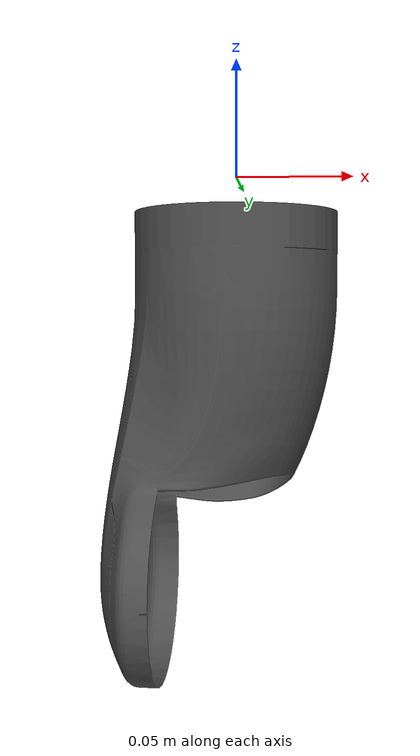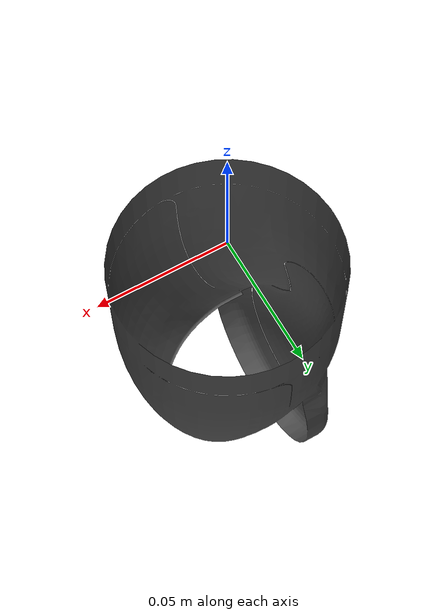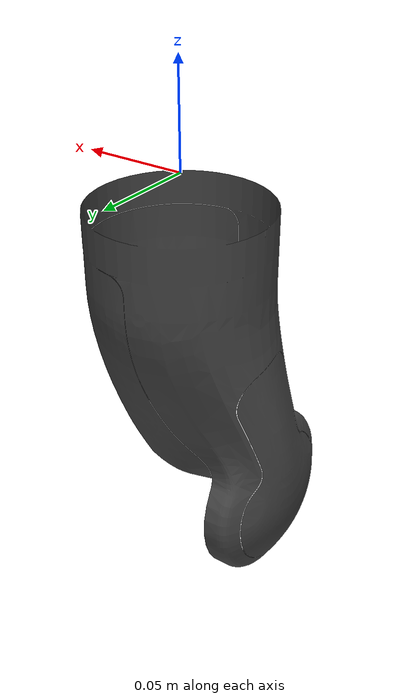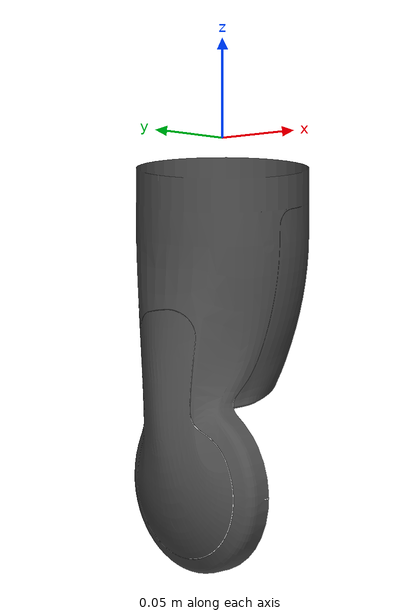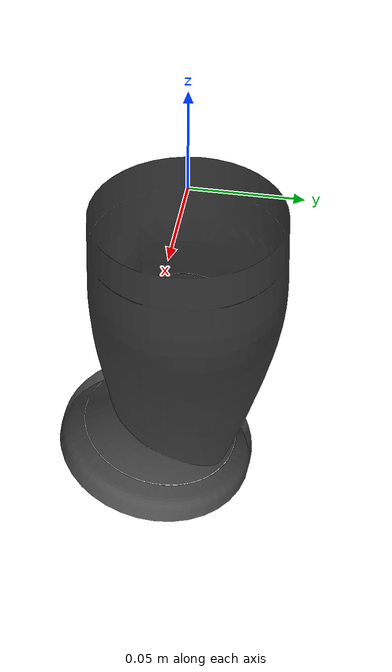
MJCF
<mujoco model="arm3_link">
  <default>
    <default class="visual">
      <geom group="2" type="mesh" contype="0" conaffinity="0"/>
    </default>
    <default class="collision">
      <geom group="3" type="mesh"/>
    </default>
  </default>
  <asset>
    <material name="mtl_arm3_link" specular="0.20000000000000004" shininess="1.0" rgba="0.29803922 0.29803922 0.29803922 1.0"/>
    <mesh file="arm3_link.obj"/>
  </asset>
  <worldbody>
    <body name="arm3_link">
      <geom material="mtl_arm3_link" mesh="arm3_link" class="visual"/>
      <geom mesh="arm3_link" class="collision"/>
    </body>
  </worldbody>
</mujoco>
